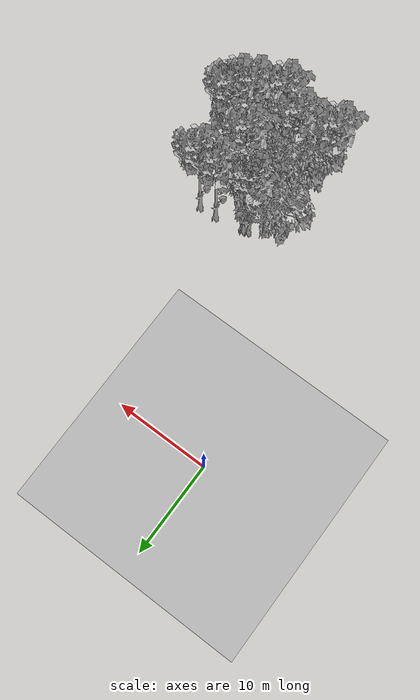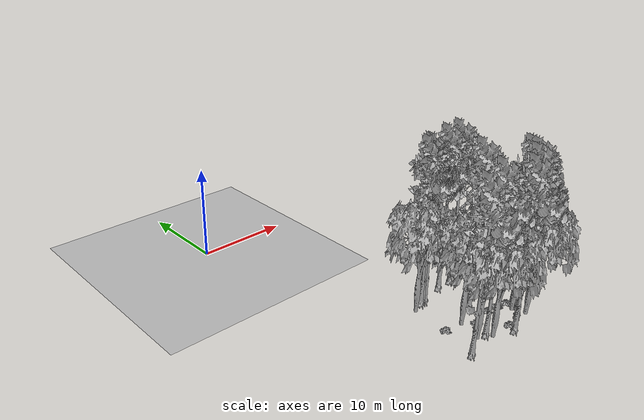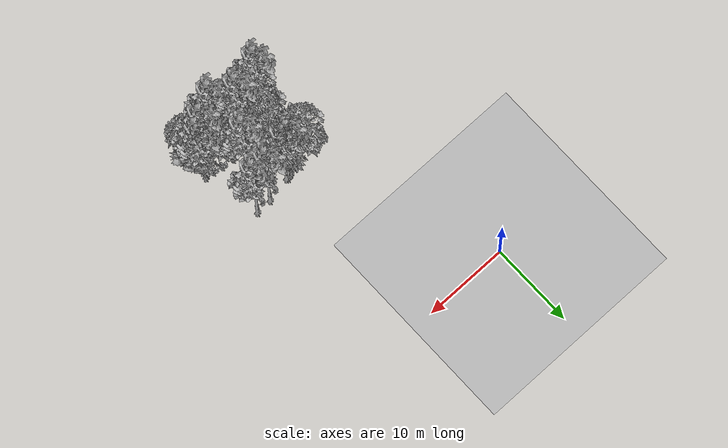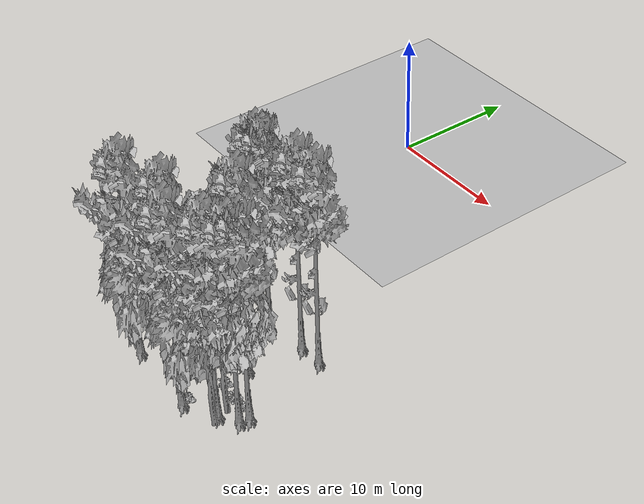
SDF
<sdf version="1.7">
 <world name="default">
  <model name="ground_plane">
   <static>1</static>
   <link name="link">
    <collision name="collision">
     <pose>-50 0 0 0 -0 0</pose>
     <geometry><plane><normal>0 0 1</normal><size>80 80</size></plane></geometry>
     <surface><contact><ode><min_depth>0.01</min_depth><max_vel>0</max_vel></ode></contact></surface>
    </collision>
    <visual name="grass">
     <cast_shadows>0</cast_shadows>
     <geometry>
      <mesh>
       <scale>0.46714285714285714 0.46714285714285714 0.1</scale>
       <uri>file://grass_plane/meshes/grass_plane.dae</uri>
      </mesh>
     </geometry>
    </visual>
   </link>
  </model>
  <model name="Tree 7">
   <static>1</static>
   <pose>13.831587027069752 -30.261988147326456 0 1.57079 -0 0</pose>
   <link name="link">
    <collision name="collision">
     <geometry><mesh><scale>3.5 5 3.5</scale><uri>model://tree_9/meshes/tree_9.obj</uri></mesh></geometry>
    </collision>
    <visual name="visual">
     <geometry><mesh><scale>3.5 5 3.5</scale><uri>model://tree_9/meshes/tree_9.obj</uri></mesh></geometry>
    </visual>
   </link>
  </model>
  <model name="Tree 82">
   <static>1</static>
   <pose>10.451971008521035 -26.610747101891565 0 1.57079 -0 0</pose>
   <link name="link">
    <collision name="collision">
     <geometry><mesh><scale>3.5 5 3.5</scale><uri>model://tree_2/meshes/tree_2.obj</uri></mesh></geometry>
    </collision>
    <visual name="visual">
     <geometry><mesh><scale>3.5 5 3.5</scale><uri>model://tree_2/meshes/tree_2.obj</uri></mesh></geometry>
    </visual>
   </link>
  </model>
  <model name="Tree 96">
   <static>1</static>
   <pose>11.075321419133012 -29.691096484623394 0 1.57079 -0 0</pose>
   <link name="link">
    <collision name="collision">
     <geometry><mesh><scale>3.5 5 3.5</scale><uri>model://tree_2/meshes/tree_2.obj</uri></mesh></geometry>
    </collision>
    <visual name="visual">
     <geometry><mesh><scale>3.5 5 3.5</scale><uri>model://tree_2/meshes/tree_2.obj</uri></mesh></geometry>
    </visual>
   </link>
  </model>
  <model name="Tree 114">
   <static>1</static>
   <pose>17.470973327512056 -28.199257938686166 0 1.57079 -0 0</pose>
   <link name="link">
    <collision name="collision">
     <geometry><mesh><scale>3.5 5 3.5</scale><uri>model://tree_9/meshes/tree_9.obj</uri></mesh></geometry>
    </collision>
    <visual name="visual">
     <geometry><mesh><scale>3.5 5 3.5</scale><uri>model://tree_9/meshes/tree_9.obj</uri></mesh></geometry>
    </visual>
   </link>
  </model>
  <model name="Tree 121">
   <static>1</static>
   <pose>16.1788326661051 -28.998686823536328 0 1.57079 -0 0</pose>
   <link name="link">
    <collision name="collision">
     <geometry><mesh><scale>3.5 5 3.5</scale><uri>model://tree_9/meshes/tree_9.obj</uri></mesh></geometry>
    </collision>
    <visual name="visual">
     <geometry><mesh><scale>3.5 5 3.5</scale><uri>model://tree_9/meshes/tree_9.obj</uri></mesh></geometry>
    </visual>
   </link>
  </model>
  <model name="Tree 228">
   <static>1</static>
   <pose>7.799926975124492 -29.86277621064385 0 1.57079 -0 0</pose>
   <link name="link">
    <collision name="collision">
     <geometry><mesh><scale>3.5 5 3.5</scale><uri>model://tree_9/meshes/tree_9.obj</uri></mesh></geometry>
    </collision>
    <visual name="visual">
     <geometry><mesh><scale>3.5 5 3.5</scale><uri>model://tree_9/meshes/tree_9.obj</uri></mesh></geometry>
    </visual>
   </link>
  </model>
  <model name="Tree 310">
   <static>1</static>
   <pose>14.259567820745069 -20.93528288687721 0 1.57079 -0 0</pose>
   <link name="link">
    <collision name="collision">
     <geometry><mesh><scale>3.5 5 3.5</scale><uri>model://tree_9/meshes/tree_9.obj</uri></mesh></geometry>
    </collision>
    <visual name="visual">
     <geometry><mesh><scale>3.5 5 3.5</scale><uri>model://tree_9/meshes/tree_9.obj</uri></mesh></geometry>
    </visual>
   </link>
  </model>
  <model name="Tree 323">
   <static>1</static>
   <pose>16.147816637657 -20.865017339480207 0 1.57079 -0 0</pose>
   <link name="link">
    <collision name="collision">
     <geometry><mesh><scale>3.5 5 3.5</scale><uri>model://tree_9/meshes/tree_9.obj</uri></mesh></geometry>
    </collision>
    <visual name="visual">
     <geometry><mesh><scale>3.5 5 3.5</scale><uri>model://tree_9/meshes/tree_9.obj</uri></mesh></geometry>
    </visual>
   </link>
  </model>
  <model name="Tree 342">
   <static>1</static>
   <pose>9.78796900939485 -28.89606609876602 0 1.57079 -0 0</pose>
   <link name="link">
    <collision name="collision">
     <geometry><mesh><scale>3.5 5 3.5</scale><uri>model://tree_2/meshes/tree_2.obj</uri></mesh></geometry>
    </collision>
    <visual name="visual">
     <geometry><mesh><scale>3.5 5 3.5</scale><uri>model://tree_2/meshes/tree_2.obj</uri></mesh></geometry>
    </visual>
   </link>
  </model>
  <model name="Tree 357">
   <static>1</static>
   <pose>17.64562064092687 -27.503510494881887 0 1.57079 -0 0</pose>
   <link name="link">
    <collision name="collision">
     <geometry><mesh><scale>3.5 5 3.5</scale><uri>model://tree_9/meshes/tree_9.obj</uri></mesh></geometry>
    </collision>
    <visual name="visual">
     <geometry><mesh><scale>3.5 5 3.5</scale><uri>model://tree_9/meshes/tree_9.obj</uri></mesh></geometry>
    </visual>
   </link>
  </model>
  <model name="Tree 359">
   <static>1</static>
   <pose>16.584826763056327 -29.58092752830985 0 1.57079 -0 0</pose>
   <link name="link">
    <collision name="collision">
     <geometry><mesh><scale>3.5 5 3.5</scale><uri>model://tree_2/meshes/tree_2.obj</uri></mesh></geometry>
    </collision>
    <visual name="visual">
     <geometry><mesh><scale>3.5 5 3.5</scale><uri>model://tree_2/meshes/tree_2.obj</uri></mesh></geometry>
    </visual>
   </link>
  </model>
  <model name="Tree 437">
   <static>1</static>
   <pose>8.858304996992544 -22.3992123950585 0 1.57079 -0 0</pose>
   <link name="link">
    <collision name="collision">
     <geometry><mesh><scale>3.5 5 3.5</scale><uri>model://tree_2/meshes/tree_2.obj</uri></mesh></geometry>
    </collision>
    <visual name="visual">
     <geometry><mesh><scale>3.5 5 3.5</scale><uri>model://tree_2/meshes/tree_2.obj</uri></mesh></geometry>
    </visual>
   </link>
  </model>
  <model name="Tree 453">
   <static>1</static>
   <pose>11.156213804469381 -21.45355893126621 0 1.57079 -0 0</pose>
   <link name="link">
    <collision name="collision">
     <geometry><mesh><scale>3.5 5 3.5</scale><uri>model://tree_9/meshes/tree_9.obj</uri></mesh></geometry>
    </collision>
    <visual name="visual">
     <geometry><mesh><scale>3.5 5 3.5</scale><uri>model://tree_9/meshes/tree_9.obj</uri></mesh></geometry>
    </visual>
   </link>
  </model>
  <model name="Tree 485">
   <static>1</static>
   <pose>16.14312535151501 -28.32386024836633 0 1.57079 -0 0</pose>
   <link name="link">
    <collision name="collision">
     <geometry><mesh><scale>3.5 5 3.5</scale><uri>model://tree_2/meshes/tree_2.obj</uri></mesh></geometry>
    </collision>
    <visual name="visual">
     <geometry><mesh><scale>3.5 5 3.5</scale><uri>model://tree_2/meshes/tree_2.obj</uri></mesh></geometry>
    </visual>
   </link>
  </model>
  <model name="Tree 514">
   <static>1</static>
   <pose>13.817010622631898 -25.072079206524016 0 1.57079 -0 0</pose>
   <link name="link">
    <collision name="collision">
     <geometry><mesh><scale>3.5 5 3.5</scale><uri>model://tree_9/meshes/tree_9.obj</uri></mesh></geometry>
    </collision>
    <visual name="visual">
     <geometry><mesh><scale>3.5 5 3.5</scale><uri>model://tree_9/meshes/tree_9.obj</uri></mesh></geometry>
    </visual>
   </link>
  </model>
  <model name="Tree 557">
   <static>1</static>
   <pose>10.649555500131832 -21.62161306792333 0 1.57079 -0 0</pose>
   <link name="link">
    <collision name="collision">
     <geometry><mesh><scale>3.5 5 3.5</scale><uri>model://tree_9/meshes/tree_9.obj</uri></mesh></geometry>
    </collision>
    <visual name="visual">
     <geometry><mesh><scale>3.5 5 3.5</scale><uri>model://tree_9/meshes/tree_9.obj</uri></mesh></geometry>
    </visual>
   </link>
  </model>
  <model name="Tree 561">
   <static>1</static>
   <pose>11.228946366172082 -28.90098550018804 0 1.57079 -0 0</pose>
   <link name="link">
    <collision name="collision">
     <geometry><mesh><scale>3.5 5 3.5</scale><uri>model://tree_9/meshes/tree_9.obj</uri></mesh></geometry>
    </collision>
    <visual name="visual">
     <geometry><mesh><scale>3.5 5 3.5</scale><uri>model://tree_9/meshes/tree_9.obj</uri></mesh></geometry>
    </visual>
   </link>
  </model>
  <model name="Tree 585">
   <static>1</static>
   <pose>11.344426034015129 -21.54205121033869 0 1.57079 -0 0</pose>
   <link name="link">
    <collision name="collision">
     <geometry><mesh><scale>3.5 5 3.5</scale><uri>model://tree_9/meshes/tree_9.obj</uri></mesh></geometry>
    </collision>
    <visual name="visual">
     <geometry><mesh><scale>3.5 5 3.5</scale><uri>model://tree_9/meshes/tree_9.obj</uri></mesh></geometry>
    </visual>
   </link>
  </model>
  <model name="Bush 63">
   <static>1</static>
   <pose>13.660223817618139 -29.794398362431032 0 1.57079 -0 0</pose>
   <link name="link">
    <collision name="collision">
     <geometry><mesh><scale>2 2 2</scale><uri>model://bush_2/meshes/bush_2.obj</uri></mesh></geometry>
     <surface><contact><collide_without_contact>false</collide_without_contact></contact></surface>
    </collision>
    <visual name="visual">
     <geometry><mesh><scale>2 2 2</scale><uri>model://bush_2/meshes/bush_2.obj</uri></mesh></geometry>
    </visual>
   </link>
  </model>
  <model name="Bush 330">
   <static>1</static>
   <pose>13.991354886029306 -27.059059754528025 0 1.57079 -0 0</pose>
   <link name="link">
    <collision name="collision">
     <geometry><mesh><scale>2 2 2</scale><uri>model://bush_2/meshes/bush_2.obj</uri></mesh></geometry>
     <surface><contact><collide_without_contact>false</collide_without_contact></contact></surface>
    </collision>
    <visual name="visual">
     <geometry><mesh><scale>2 2 2</scale><uri>model://bush_2/meshes/bush_2.obj</uri></mesh></geometry>
    </visual>
   </link>
  </model>
  <model name="Bush 412">
   <static>1</static>
   <pose>8.427309320418928 -26.423289990414503 0 1.57079 -0 0</pose>
   <link name="link">
    <collision name="collision">
     <geometry><mesh><scale>2 2 2</scale><uri>model://bush_2/meshes/bush_2.obj</uri></mesh></geometry>
     <surface><contact><collide_without_contact>false</collide_without_contact></contact></surface>
    </collision>
    <visual name="visual">
     <geometry><mesh><scale>2 2 2</scale><uri>model://bush_2/meshes/bush_2.obj</uri></mesh></geometry>
    </visual>
   </link>
  </model>
  <model name="Bush 502">
   <static>1</static>
   <pose>16.50696065902185 -27.444090210330224 0 1.57079 -0 0</pose>
   <link name="link">
    <collision name="collision">
     <geometry><mesh><scale>2 2 2</scale><uri>model://bush_2/meshes/bush_2.obj</uri></mesh></geometry>
     <surface><contact><collide_without_contact>false</collide_without_contact></contact></surface>
    </collision>
    <visual name="visual">
     <geometry><mesh><scale>2 2 2</scale><uri>model://bush_2/meshes/bush_2.obj</uri></mesh></geometry>
    </visual>
   </link>
  </model>
  <model name="Bush 598">
   <static>1</static>
   <pose>15.411439193654871 -27.2282006754868 0 1.57079 -0 0</pose>
   <link name="link">
    <collision name="collision">
     <geometry><mesh><scale>2 2 2</scale><uri>model://bush_2/meshes/bush_2.obj</uri></mesh></geometry>
     <surface><contact><collide_without_contact>false</collide_without_contact></contact></surface>
    </collision>
    <visual name="visual">
     <geometry><mesh><scale>2 2 2</scale><uri>model://bush_2/meshes/bush_2.obj</uri></mesh></geometry>
    </visual>
   </link>
  </model>
  <model name="Bush 599">
   <static>1</static>
   <pose>10.256100886481612 -28.183562040306825 0 1.57079 -0 0</pose>
   <link name="link">
    <collision name="collision">
     <geometry><mesh><scale>2 2 2</scale><uri>model://bush_5/meshes/bush_5.obj</uri></mesh></geometry>
     <surface><contact><collide_without_contact>false</collide_without_contact></contact></surface>
    </collision>
    <visual name="visual">
     <geometry><mesh><scale>2 2 2</scale><uri>model://bush_5/meshes/bush_5.obj</uri></mesh></geometry>
    </visual>
   </link>
  </model>
 </world>
</sdf>
